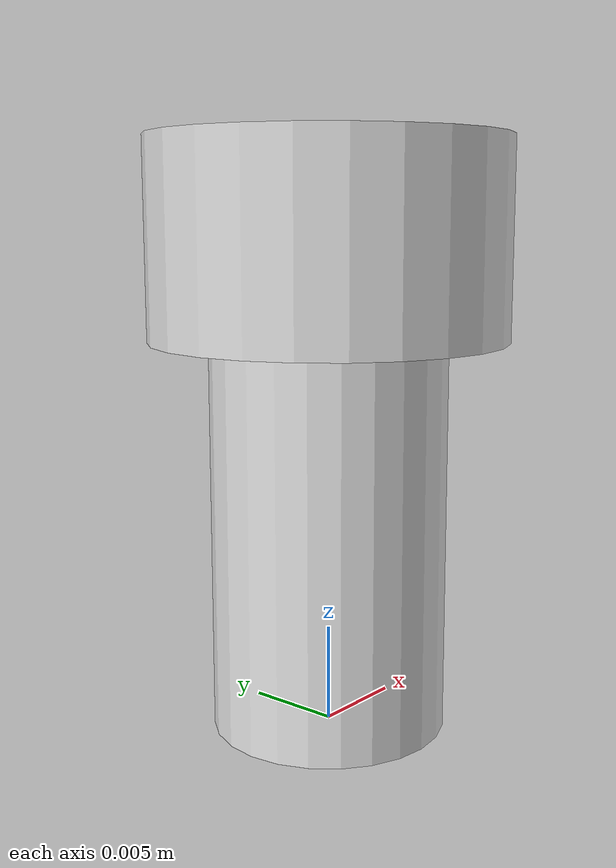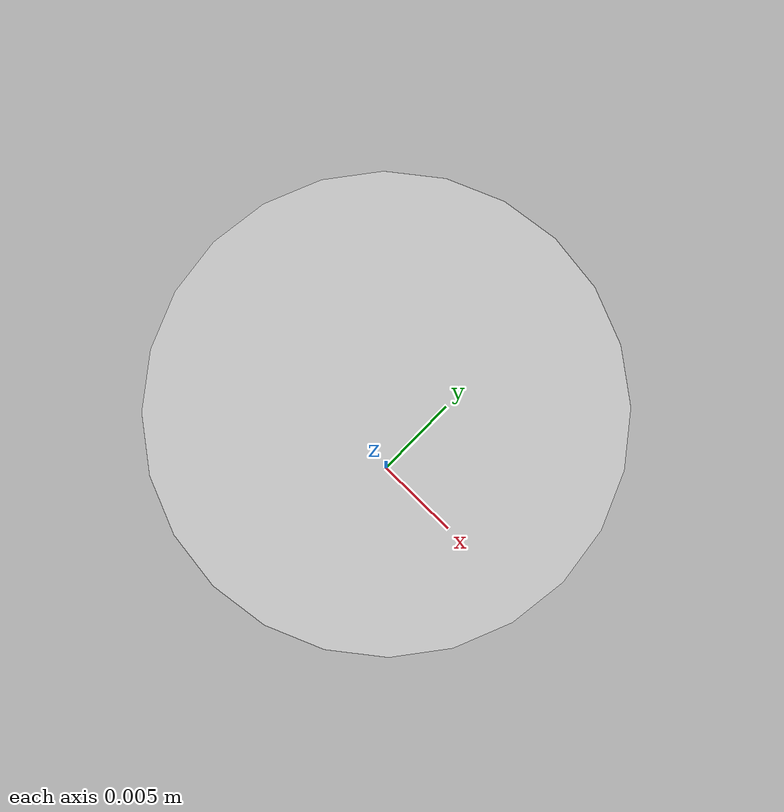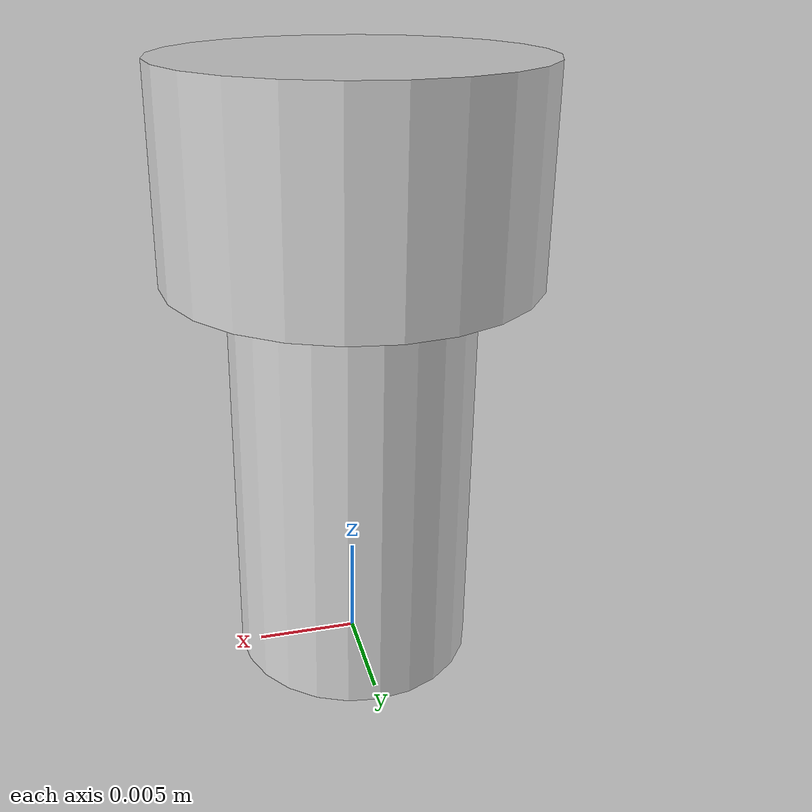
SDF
<?xml version="1.0"?>
<sdf version="1.7" xmlns:drake="drake.mit.edu">

  <model name="m12_screw_gpt">
    <link name="m12_screw_gpt">
      <inertial>
        <!-- Center of mass (computed for the two-cylinder assembly) -->
        <pose>0 0 0.01794 0 0 0</pose>
        <!-- Total mass (approximate, steel) -->
        <mass>0.03773</mass>
        <inertia>
          <!-- Principal inertias about the model frame (kg*m^2) -->
          <ixx>3.43786e-06</ixx>
          <ixy>0.0</ixy>
          <ixz>0.0</ixz>
          <iyy>3.43786e-06</iyy>
          <iyz>0.0</iyz>
          <izz>1.12840e-06</izz>
        </inertia>
      </inertial>

      <!-- Visual: Shaft (long thin cylinder) -->
      <visual name="shaft_visual">
        <pose>0 0 0.01 0 0 0</pose>
        <geometry>
          <cylinder>
            <radius>0.006</radius>
            <length>0.02</length>
          </cylinder>
        </geometry>
        <material>
          <ambient>0.6 0.6 0.6 1</ambient>
          <diffuse>0.8 0.8 0.8 1</diffuse>
          <specular>0.2 0.2 0.2 1</specular>
        </material>
      </visual>

      <!-- Visual: Head (short, wider cylinder) -->
      <visual name="head_visual">
        <pose>0 0 0.025 0 0 0</pose>
        <geometry>
          <cylinder>
            <radius>0.009</radius>
            <length>0.01</length>
          </cylinder>
        </geometry>
        <material>
          <ambient>0.6 0.6 0.6 1</ambient>
          <diffuse>0.8 0.8 0.8 1</diffuse>
          <specular>0.2 0.2 0.2 1</specular>
        </material>
      </visual>

      <!-- Collision: shaft -->
      <collision name="shaft_collision">
        <pose>0 0 0.01 0 0 0</pose>
        <geometry>
          <cylinder>
            <radius>0.006</radius>
            <length>0.02</length>
          </cylinder>
        </geometry>
        <!-- Proximity properties (left commented as in other models) -->
      </collision>

      <!-- Collision: head -->
      <collision name="head_collision">
        <pose>0 0 0.025 0 0 0</pose>
        <geometry>
          <cylinder>
            <radius>0.009</radius>
            <length>0.01</length>
          </cylinder>
        </geometry>
      </collision>
    </link>

    <!-- Helpful frames matching the style of the repository's other models -->
    <frame name="origin">
      <pose relative_to="m12_screw_gpt">0 0 0 0 0 0</pose>
    </frame>
    <frame name="m12_screw_frame">
      <pose relative_to="m12_screw_gpt">0 0 0 0 0 0</pose>
    </frame>
  </model>
</sdf>
